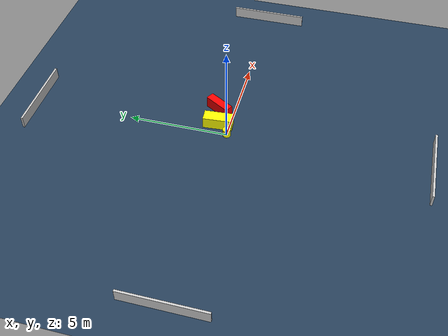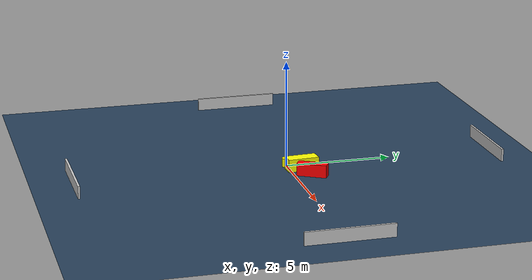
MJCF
<?xml version="1.0" ?>
<mujoco model="generated_environment">
  <option timestep="0.01" integrator="RK4" cone="elliptic"/>
  <default>
    <geom density="1"/>
  </default>
  <asset>
    <texture builtin="gradient" height="3072" name="skybox" rgb1="0.3 0.5 0.7" rgb2="0 0 0" type="skybox" width="512"/>
    <texture builtin="checker" height="300" name="groundplane" rgb1="0.2 0.3 0.4" rgb2="0.1 0.2 0.3" type="2d" width="300"/>
    <material name="groundplane" reflectance="0.2" texrepeat="5 5" texture="groundplane"/>
  </asset>
  <worldbody>
    <light dir="0 0 -1" directional="true" pos="0 0 1.5"/>
    <geom condim="3" friction="0.5 0.005 0.001" material="groundplane" name="floor" pos="0 0 0" size="0 0 0.05" type="plane"/>
    <body name="walls">
      <geom name="wall_1" condim="4" pos="-10.0 0.0 0.3" rgba="0.800000011920929 0.800000011920929 0.800000011920929 1.0" size="0.05 2.0 0.3" type="box"/>
      <geom name="wall_2" condim="4" pos="10.0 0.0 0.3" rgba="0.800000011920929 0.800000011920929 0.800000011920929 1.0" size="0.05 2.0 0.3" type="box"/>
      <geom name="wall_3" condim="4" pos="0.0 -10.0 0.3" rgba="0.800000011920929 0.800000011920929 0.800000011920929 1.0" size="2.0 0.05 0.3" type="box"/>
      <geom name="wall_4" condim="4" pos="0.0 10.0 0.3" rgba="0.800000011920929 0.800000011920929 0.800000011920929 1.0" size="2.0 0.05 0.3" type="box"/>
    </body>
    <body name="robot">
      <joint name="joint_x" type="slide" pos="0 0 0" axis="1 0 0"/>
      <joint name="joint_y" type="slide" pos="0 0 0" axis="0 1 0"/>
      <geom name="robot" type="cylinder" pos="0.0 0.0 0.2" size="0.2 0.2 0.0" mass="5.0" friction="1.0 0.005 0.0001" condim="4" rgba="1.0 1.0 0.0 1.0"/>
    </body>
    <body name="obstacle_1_movable">
      <geom name="obstacle_1_movable" condim="4" pos="0.5979025042558155 0.5848012839162523 0.3" euler="0 0 93.93528347939956" friction="0.0 0.005 0.001" rgba="1.0 1.0 0.0 1.0" size="0.7371028807569895 0.30643255124512647 0.3" type="box" mass="0.1"/>
      <joint type="free"/>
    </body>
    <body name="obstacle_2_static">
      <geom name="obstacle_2_static" condim="4" pos="1.6375142102936404 0.8048745182618073 0.3" euler="0 0 329.1243507281399" friction="0.0 0.005 0.001" rgba="1.0 0.0 0.0 1.0" size="0.21279633728955372 0.7001832603277418 0.3" type="box"/>
    </body>
  </worldbody>
  <actuator>
    <motor name="actuator_x" joint="joint_x" gear="1" ctrlrange="-1 1"/>
    <motor name="actuator_y" joint="joint_y" gear="1" ctrlrange="-1 1"/>
  </actuator>
</mujoco>
